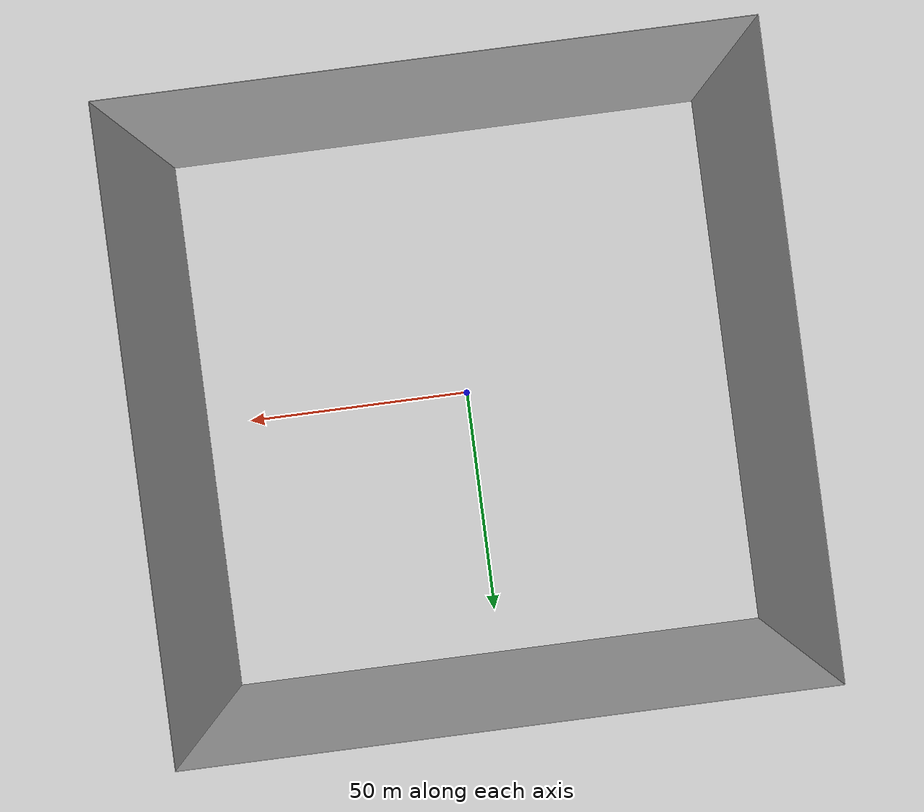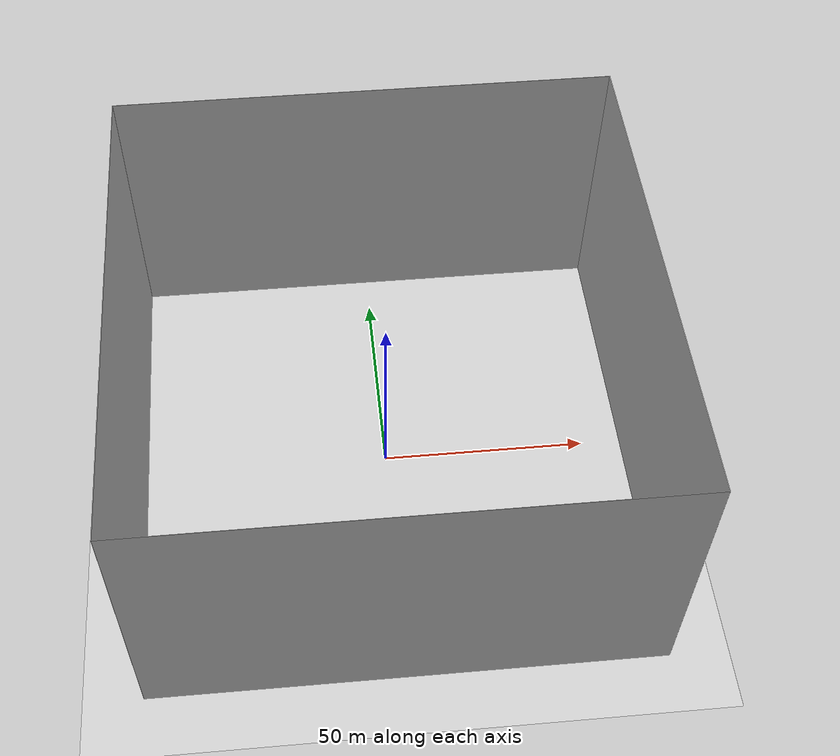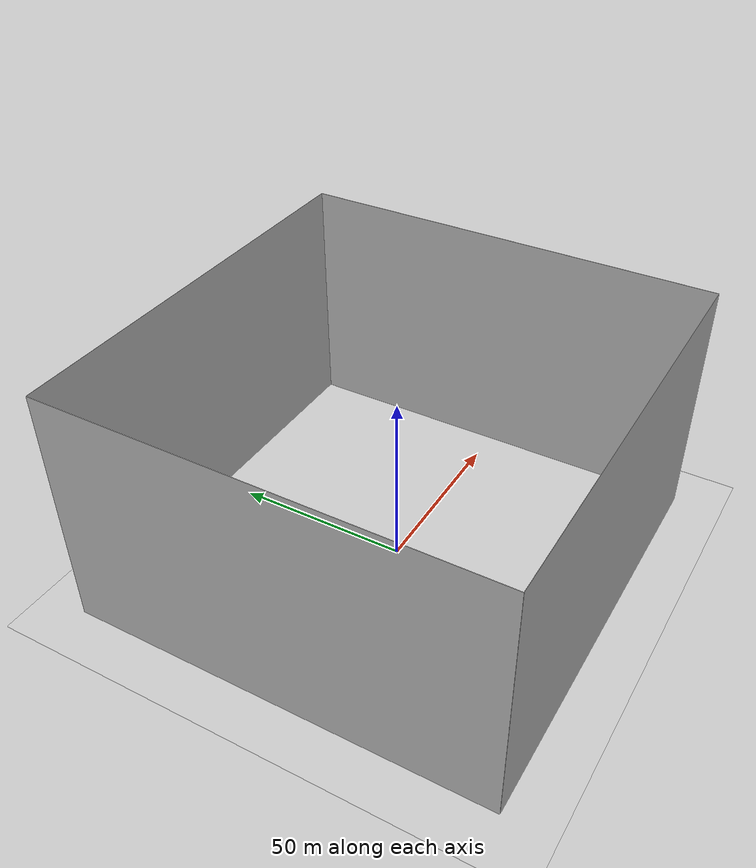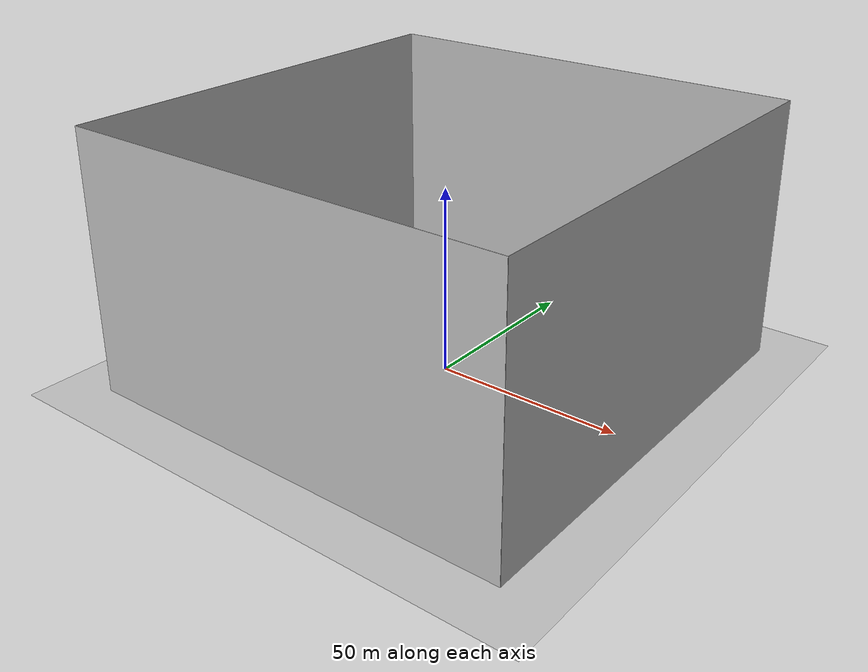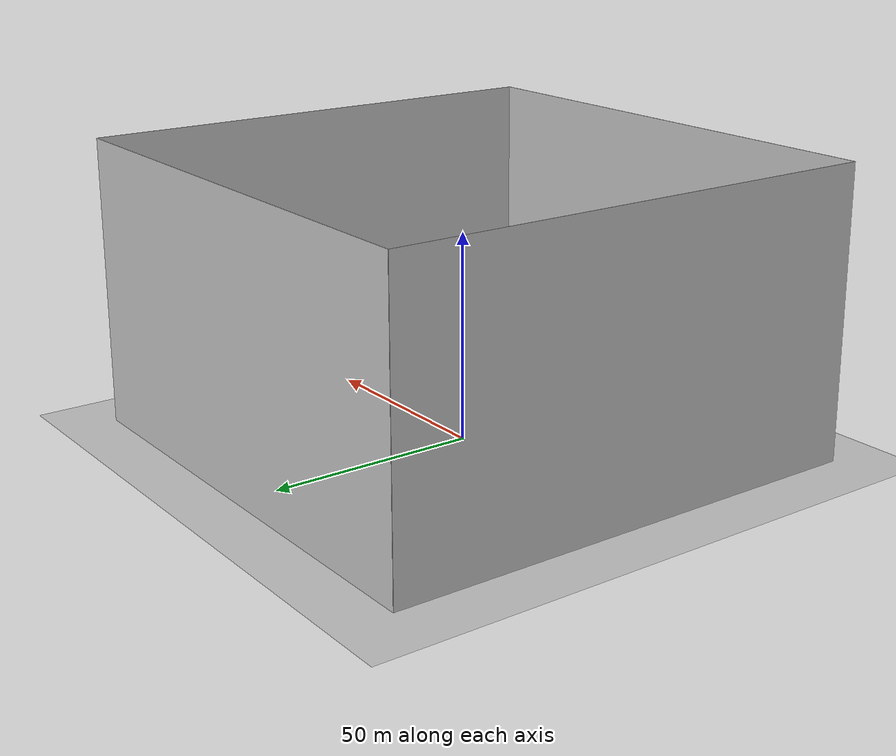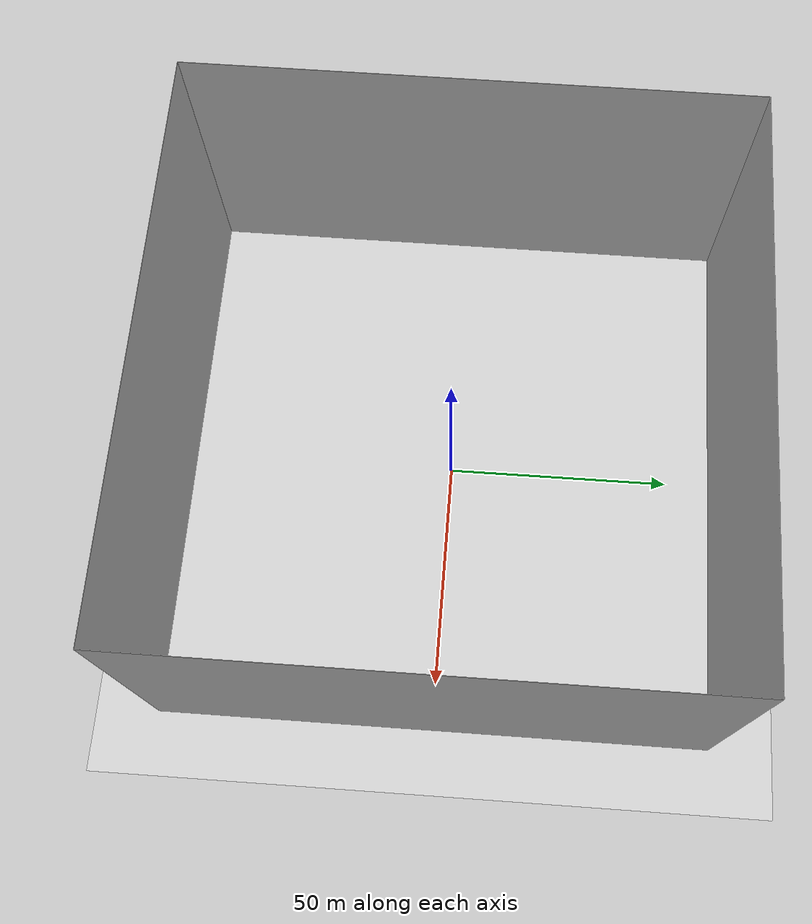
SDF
<sdf version="1.6">
 <world name="real_track">
  <plugin name="ros_interface_plugin" filename="librotors_gazebo_ros_interface_plugin.so"/>
  <physics name="default_physics" default="0" type="ode">
   <max_step_size>0.001</max_step_size>
   <real_time_update_rate>1000</real_time_update_rate>
   <real_time_factor>1.0</real_time_factor>
  </physics>
  <include><uri>model://sun</uri></include>
  <model name="ground_plane">
   <static>true</static>
   <link name="link">
    <collision name="collision">
     <geometry><plane><normal>0 0 1</normal><size>120 120</size></plane></geometry>
     <surface><friction><ode><mu>100</mu><mu2>50</mu2></ode></friction></surface>
    </collision>
    <visual name="visual">
     <cast_shadows>false</cast_shadows>
     <geometry><plane><normal>0 0 1</normal><size>120 120</size></plane></geometry>
     <material>
      <script>
       <uri>model://race_track/iros_materials/materials/scripts/carpet.material</uri>
       <uri>model://race_track/iros_materials/materials/textures</uri>
       <name>iros/carpet</name>
      </script>
     </material>
    </visual>
   </link>
  </model>
  <model name="wall_1">
   <pose>-60.0 0.0 34.0 0 0 0</pose>
   <static>true</static>
   <link name="link">
    <inertial><mass>1.0</mass></inertial>
    <collision name="collision"><geometry><box><size>0.1 120.0 70.0</size></box></geometry></collision>
    <visual name="visual">
     <geometry><box><size>0.1 120.0 70.0</size></box></geometry>
     <material>
      <script>
       <uri>model://race_track/iros_materials/materials/scripts/wall_1.material</uri>
       <uri>model://race_track/iros_materials/materials/textures</uri>
       <name>iros/wall_1</name>
      </script>
     </material>
    </visual>
   </link>
  </model>
  <model name="wall_2">
   <pose>0.0 -60.0 34.0 0 0 0</pose>
   <static>true</static>
   <link name="link">
    <inertial><mass>1.0</mass></inertial>
    <collision name="collision"><geometry><box><size>120 0.1 70.0</size></box></geometry></collision>
    <visual name="visual">
     <geometry><box><size>120 0.1 70.0</size></box></geometry>
     <material>
      <script>
       <uri>model://race_track/iros_materials/materials/scripts/wall_2.material</uri>
       <uri>model://race_track/iros_materials/materials/textures</uri>
       <name>iros/wall_2</name>
      </script>
     </material>
    </visual>
   </link>
  </model>
  <model name="wall_3">
   <pose>60.0 0.0 34.0 0 0 0</pose>
   <static>true</static>
   <link name="link">
    <inertial><mass>1.0</mass></inertial>
    <collision name="collision"><geometry><box><size>0.1 120.0 70.0</size></box></geometry></collision>
    <visual name="visual">
     <geometry><box><size>0.1 120.0 70.0</size></box></geometry>
     <material>
      <script>
       <uri>model://race_track/iros_materials/materials/scripts/wall_3.material</uri>
       <uri>model://race_track/iros_materials/materials/textures</uri>
       <name>iros/wall_3</name>
      </script>
     </material>
    </visual>
   </link>
  </model>
  <model name="wall_4">
   <pose>0.0 60.0 34.0 0 0 0</pose>
   <static>true</static>
   <link name="link">
    <inertial><mass>1.0</mass></inertial>
    <collision name="collision"><geometry><box><size>120 0.1 70.0</size></box></geometry></collision>
    <visual name="visual">
     <geometry><box><size>120 0.1 70.0</size></box></geometry>
     <material>
      <script>
       <uri>model://race_track/iros_materials/materials/scripts/wall_4.material</uri>
       <uri>model://race_track/iros_materials/materials/textures</uri>
       <name>iros/wall_4</name>
      </script>
     </material>
    </visual>
   </link>
  </model>
 </world>
</sdf>
